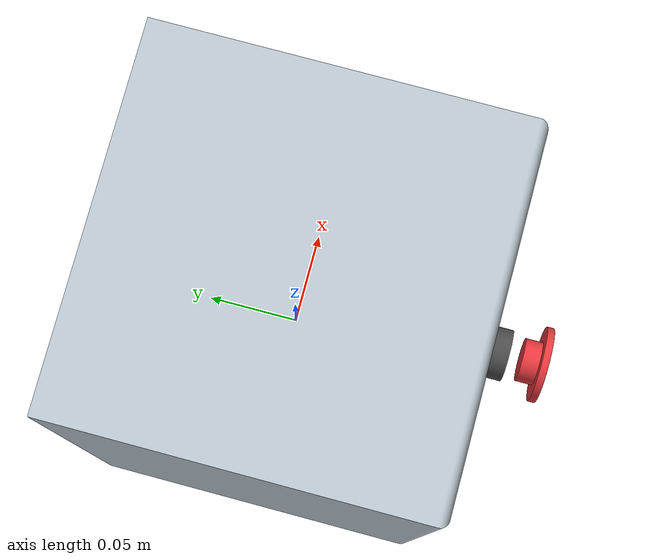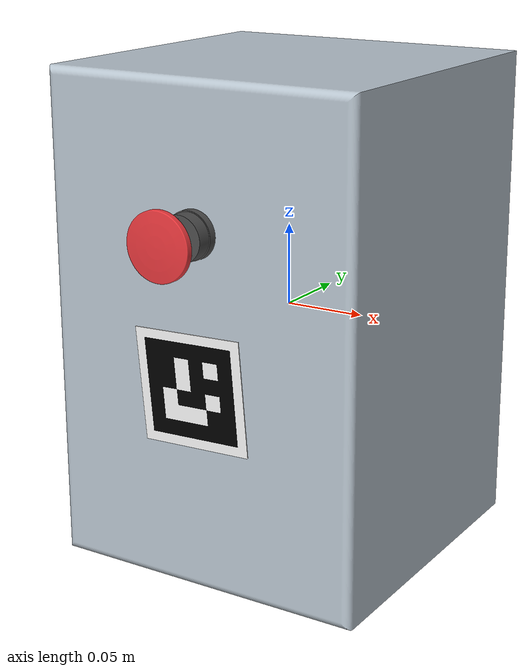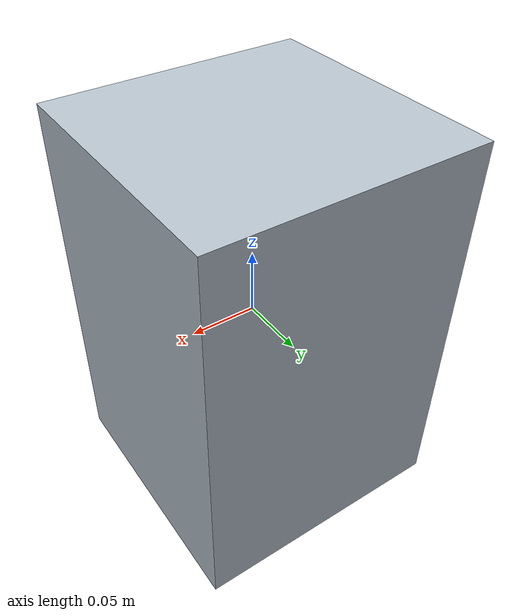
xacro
<?xml version="1.0" ?>

<robot name="box" xmlns:xacro="http://ros.org/wiki/xacro">

<link name="box_base_link">

</link>

<joint name="base_to_box" type="fixed">
<parent link="box_base_link"/>
<child link="box"/>
<origin rpy="0 0 0" xyz="0 0 0"/>
</joint>

<link name="box_base_link_1">

</link>

<joint name="base_to_box1" type="fixed">
<parent link="box_base_link"/>
<child link="box_base_link_1"/>
<origin rpy="0 0 0" xyz="0.0 0.008 -0.075"/>
</joint>

<link name="box_base_link_2">

</link>

<joint name="base_to_box2" type="fixed">
<parent link="box_base_link"/>
<child link="box_base_link_2"/>
<origin rpy="0 0 0" xyz="0.0 0.033 0.065"/>
</joint>

<link name="box_base_link_3">

</link>

<joint name="base_to_box3" type="fixed">
<parent link="box_base_link"/>
<child link="box_base_link_3"/>
<origin rpy="0 0 0" xyz="0.0 0.008 0.14"/>
</joint>

<link name="box">
  <inertial>
    <mass value="5.611"/>
    <origin rpy="0  0  0" xyz="0 0 0"/>
    <inertia ixx="9.07511659e-2" ixy="0" ixz="-4.92675874e-9"
             iyy="8.249e-2" iyz="2.532e-5" izz="6.294e-2"/>
  </inertial>
  <collision>
    <origin rpy="0  0  0" xyz="0 0 0"/>
    <geometry>
      <mesh filename="package://borg_arm_gazebo/meshes/modifiedBox.dae" scale="1 1 1"/>
    </geometry>
  </collision>
  <visual>
    <origin rpy="0  0  0" xyz="0 0 0"/>
    <geometry>
      <mesh filename="package://borg_arm_gazebo/meshes/modifiedBox.dae" scale="1 1 1"/>
    </geometry>
  </visual>
</link>

<joint name="box_to_button" type="fixed">
  <parent link="box"/>
  <child link="button"/>
  <origin rpy="0 0 0" xyz="0 -0.135 0.065"/>
  </joint>

<link name="button">
  <inertial>
    <mass value="0.010"/>
    <origin rpy="0  0  0" xyz="0 0.005 0.0"/>
    <inertia ixx="8.44878328e-7" ixy="0.0" ixz="0.0"
             iyy="1.40315109e-6" iyz="0.0"
             izz="8.44878328e-7"/>
  </inertial>
  <collision>
    <origin rpy="0  0  0" xyz="0 0 0"/>
    <geometry>
      <mesh filename="package://borg_arm_gazebo/meshes/button.dae" scale="1 1 1"/>
    </geometry>
  </collision>
  <visual>
    <origin rpy="0  0  0" xyz="0 0 0"/>
    <geometry>
      <mesh filename="package://borg_arm_gazebo/meshes/button.dae" scale="1 1 1"/>
    </geometry>
  </visual>
</link>

<joint name="button_to_near_button" type="fixed">
  <parent link="button"/>
  <child link="near_button"/>
  <origin rpy="0 0 0" xyz="0 -0.13 0.0"/>
  </joint>
<link name="near_button"/>

<joint name="button_to_pressed_button" type="fixed">
  <parent link="button"/>
  <child link="pressed_button"/>
  <origin rpy="0 0 0" xyz="0 0.03 0.0"/>
  </joint>
<link name="pressed_button"/>

<joint name="button_to_aruco_id4" type="fixed">
  <parent link="button"/>
  <child link="aruco_id4"/>
  <origin rpy="1.64051 -0.03491 0" xyz="0 0.03 -0.09"/>
  </joint>
<link name="aruco_id4">
  <inertial>
    <mass value="0.003"/>
    <origin rpy="0  0  0" xyz="0 0 0.00025"/>
    <inertia ixx="1.05249203e-6" ixy="0.0" ixz="0.0"
             iyy="1.05249203e-6" iyz="0.0"
             izz="2.10487667e-6"/>
  </inertial>
  <collision>
    <origin rpy="0  0  0" xyz="0 0 0"/>
    <geometry>
      <mesh filename="package://borg_arm_gazebo/meshes/aruco_id4_5x5cm.dae" scale="1.16 1.16 1.16"/>
    </geometry>
  </collision>
  <visual>
    <origin rpy="0  0  0" xyz="0 0 0"/>
    <geometry>
      <mesh filename="package://borg_arm_gazebo/meshes/aruco_id4_5x5cm.dae" scale="1.16 1.16 1.16"/>
    </geometry>
  </visual>
</link>

</robot>
